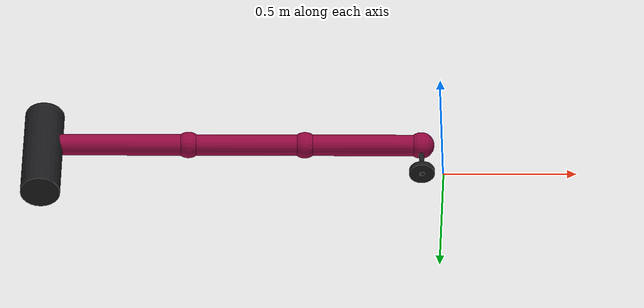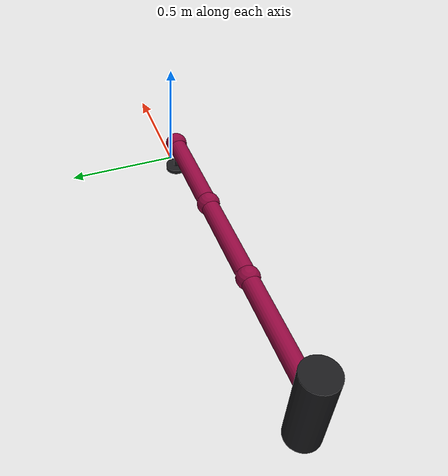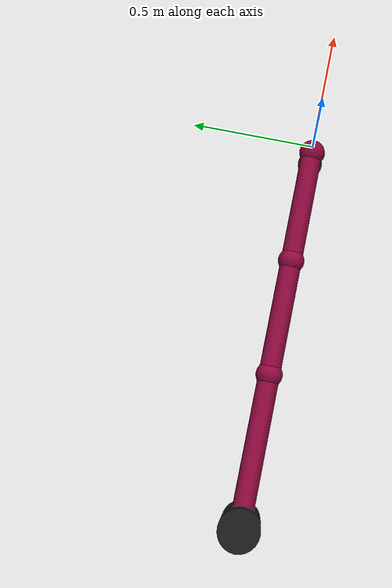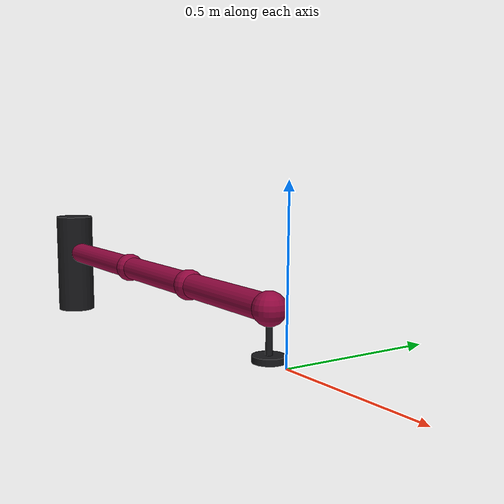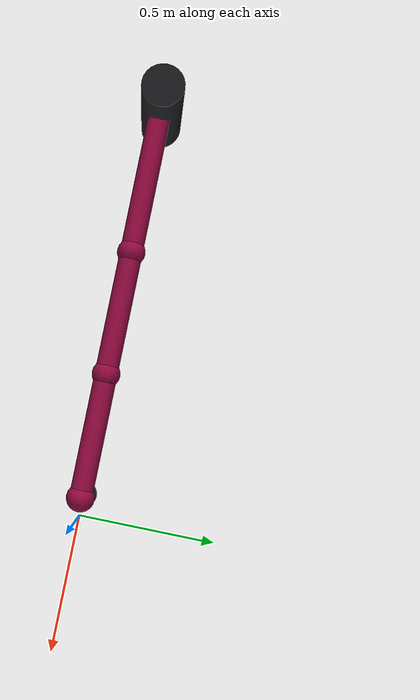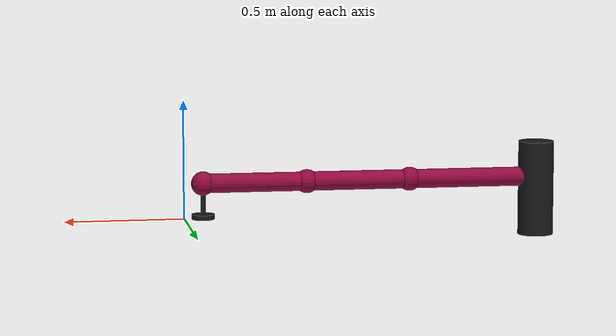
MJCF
<mujoco model="planar_robot_1">
    <compiler autolimits="true" angle="radian" meshdir="assets"/>
    <asset>
        <material name="dark_red" rgba="0.58 0.03 0.25 1"/>
        <material name="black" rgba="0.1 0.1 0.11 1"/>
    </asset>

    <default>
        <default class="visual">
            <geom contype="0" conaffinity="0"/>
        </default>

        <default class="robot">
            <geom condim="4" solref="0.02 0.3" priority="2"/>
        </default>
    </default>

    <worldbody>
        <body name="planar_robot_1/base" pos="-1.51 0 -0.1">
            <geom type="cylinder" material="black" size="0.075 0.2" pos="0 0 0.2" class="visual"/>
            <inertial pos="0 0 0" mass="1" diaginertia="0.05 0.018 0.044"/>
            <body name="planar_robot_1/body_1" pos="0 0 0.25">
                <joint name="planar_robot_1/joint_1" axis="0 0 1" range="-2.9670597283903604 2.9670597283903604"/>
                <inertial pos="0.25 0 0" mass="3" diaginertia="0.064375 0.064375 0.00375"/>
                <geom class="robot" type="cylinder" material="dark_red" size="0.04 0.275" euler="0 1.57079632679 0"
                      pos="0.275 0 0"/>
                <body name="planar_robot_1/body_2" pos="0.55 0 0">
                    <joint name="planar_robot_1/joint_2" axis="0 0 1" range="-1.8 1.8"/>
                    <inertial pos="0.2 0 0" mass="2" diaginertia="0.0335 0.0335 0.003"/>
                    <geom class="robot" type="cylinder" material="dark_red" size="0.04 0.22" euler="0 1.57079632679 0"
                          pos="0.22 0 0"/>
                    <geom class="robot" type="sphere" material="dark_red" size="0.05"/>
                    <body name="planar_robot_1/body_3" pos="0.44 0 0">
                        <joint name="planar_robot_1/joint_3" axis="0 0 1"
                               range="-2.0943951023931953 2.0943951023931953"/>
                        <inertial pos="0.2 0 0" mass="2" diaginertia="0.0335 0.0335 0.003"/>
                        <geom class="robot" type="cylinder" material="dark_red" size="0.04 0.22"
                              euler="0 1.57079632679 0" pos="0.22 0 0"/>
                        <geom class="robot" type="sphere" material="dark_red" size="0.05"/>
                        <body name="planar_robot_1/body_hand" pos="0.44 0 0">
                            <inertial pos="0 0 0" mass="0.1" diaginertia="0.0008 0.0023 0.0023"/>
                            <geom class="robot" type="sphere" material="dark_red" size="0.05"/>
                            <geom class="robot" type="cylinder" material="black" size="0.01 0.075" pos="0 0 -0.075"/>
                            <body name="planar_robot_1/body_ee" pos="0 0 -0.15">
                                <inertial pos="0 0 0" mass="0.1" diaginertia="0.0008 0.0023 0.0023"/>
                                <geom class="robot" name="planar_robot_1/ee" type="cylinder" material="black"
                                      size="0.04815 0.01" pos="0 0 0.01" friction="0 0 0"/>
                            </body>
                        </body>
                    </body>
                </body>
            </body>
        </body>
    </worldbody>

    <actuator>
        <motor name="planar_robot_1/joint_1" joint="planar_robot_1/joint_1" ctrlrange="-100 100"/>
        <motor name="planar_robot_1/joint_2" joint="planar_robot_1/joint_2" ctrlrange="-50 50"/>
        <motor name="planar_robot_1/joint_3" joint="planar_robot_1/joint_3" ctrlrange="-30 30"/>
    </actuator>
</mujoco>
